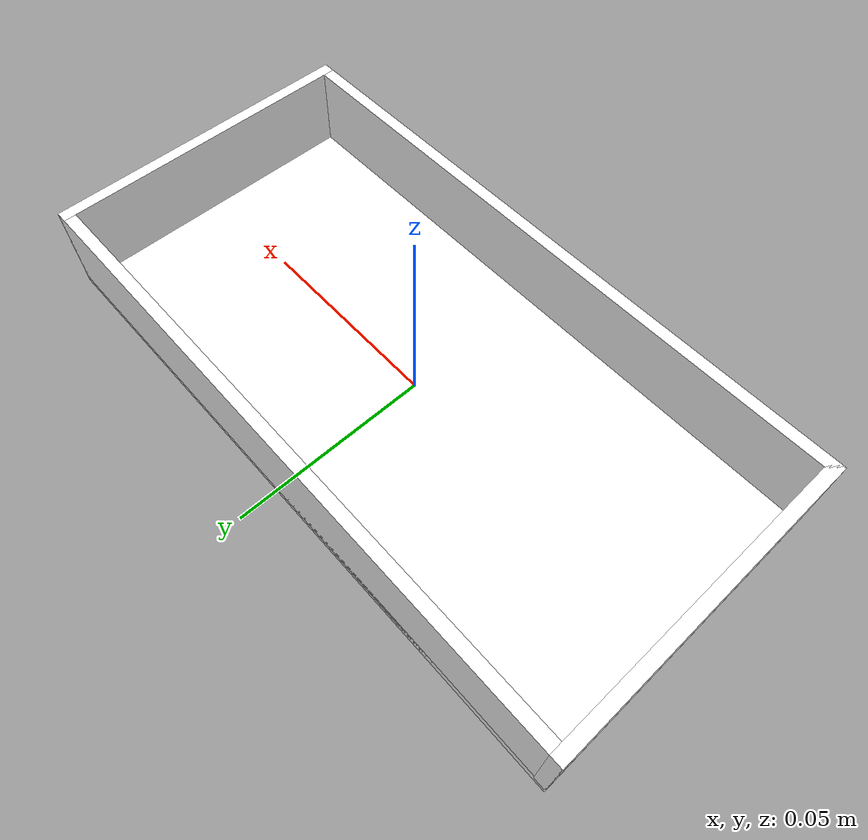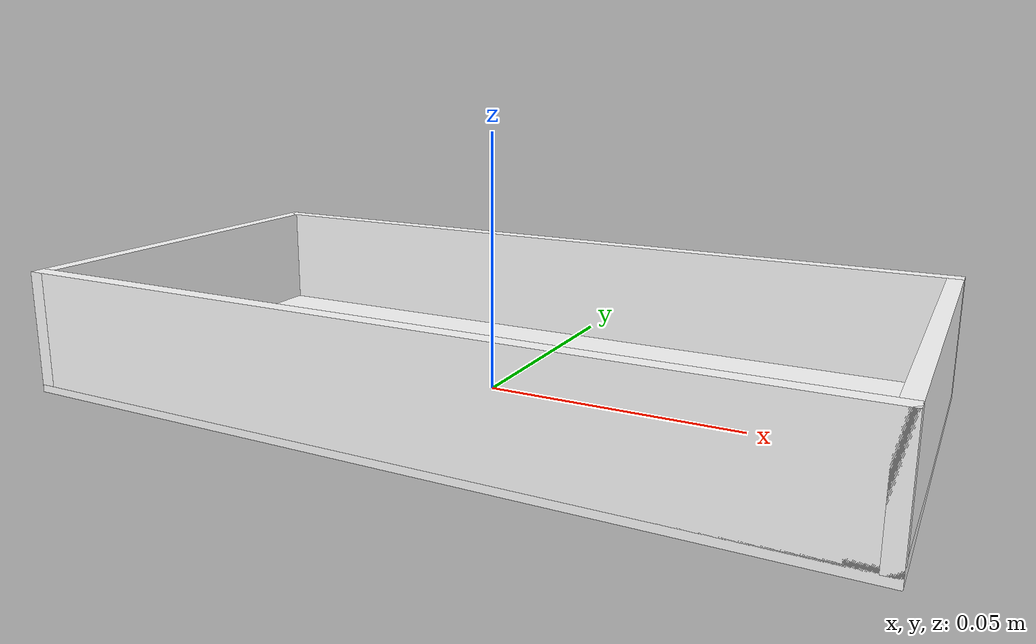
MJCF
<mujoco model="chess_box">
  <asset>
    <material name="white" rgba="1 1 1 1"/>
    <material name="black" rgba="0 0 0 1"/>
  </asset>

  <worldbody>
    <body name="box_base">
      <!-- Bottom -->
      <geom type="box" size="0.08 0.04 0.0015" pos="0 0 0" material="white"/>

      <!-- Left wall -->
      <geom type="box" size="0.0015 0.04 0.0115" pos="-0.0785 0 0.0115" material="white"/>

      <!-- Right wall -->
      <geom type="box" size="0.0015 0.04 0.0115" pos="0.0785 0 0.0115" material="white"/>

      <!-- Front wall -->
      <geom type="box" size="0.08 0.0015 0.0115" pos="0 -0.0385 0.0115" material="white"/>

      <!-- Back wall -->
      <geom type="box" size="0.08 0.0015 0.0115" pos="0 0.0385 0.0115" material="white"/>
    </body>
  </worldbody>
</mujoco>
